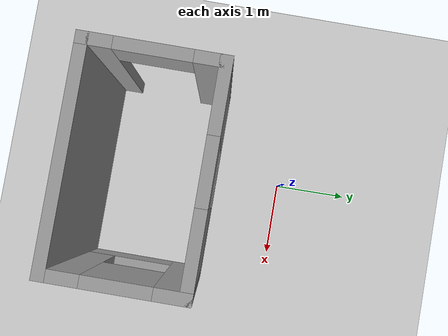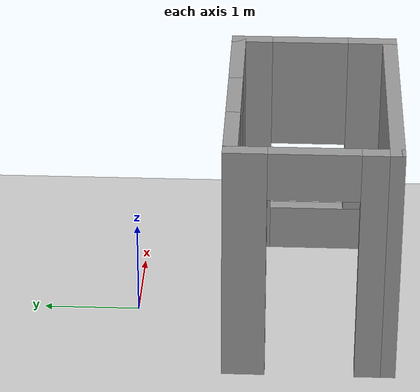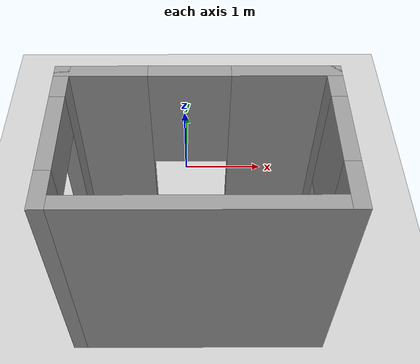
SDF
<sdf version="1.7">
 <world name="default">
  <light name="sun" type="directional">
   <pose>0 0 10 0 -0 0</pose>
   <diffuse>0.8 0.8 0.8 1</diffuse>
   <specular>0.2 0.2 0.2 1</specular>
   <attenuation>
    <range>1000</range>
    <constant>0.9</constant>
    <linear>0.01</linear>
    <quadratic>0.001</quadratic>
   </attenuation>
   <direction>-0.5 0.1 -0.9</direction>
   <spot><inner_angle>0</inner_angle><outer_angle>0</outer_angle><falloff>0</falloff></spot>
  </light>
  <model name="ground_plane">
   <static>1</static>
   <link name="link">
    <collision name="collision">
     <geometry><plane><normal>0 0 1</normal><size>100 100</size></plane></geometry>
     <surface>
      <contact><collide_bitmask>65535</collide_bitmask></contact>
      <friction><ode><mu>100</mu><mu2>50</mu2></ode></friction>
     </surface>
    </collision>
    <visual name="visual">
     <cast_shadows>0</cast_shadows>
     <geometry><plane><normal>0 0 1</normal><size>100 100</size></plane></geometry>
     <material>
      <script><uri>file://media/materials/scripts/gazebo.material</uri><name>Gazebo/Grey</name></script>
     </material>
    </visual>
   </link>
  </model>
  <gravity>0 0 -9.8</gravity>
  <magnetic_field>6e-06 2.3e-05 -4.2e-05</magnetic_field>
  <atmosphere type="adiabatic"/>
  <physics type="ode">
   <max_step_size>0.001</max_step_size>
   <real_time_factor>1</real_time_factor>
   <real_time_update_rate>1000</real_time_update_rate>
  </physics>
  <scene><ambient>0.4 0.4 0.4 1</ambient><background>0.7 0.7 0.7 1</background><shadows>1</shadows></scene>
  <audio><device>default</device></audio>
  <spherical_coordinates>
   <surface_model>EARTH_WGS84</surface_model>
   <latitude_deg>0</latitude_deg>
   <longitude_deg>0</longitude_deg>
   <elevation>0</elevation>
   <heading_deg>0</heading_deg>
  </spherical_coordinates>
  <model name="test1">
   <pose>0.16 -1.3375 0 0 -0 0</pose>
   <link name="Wall_0">
    <pose>-0 0.3375 0 0 -0 0</pose>
    <visual name="Wall_0_Visual_0">
     <pose>-0.9275 0 1.25 0 -0 0</pose>
     <geometry><box><size>0.895 0.15 2.5</size></box></geometry>
     <material>
      <script><uri>file://media/materials/scripts/gazebo.material</uri><name>Gazebo/Grey</name></script>
      <ambient>1 1 1 1</ambient>
     </material>
     <meta><layer>0</layer></meta>
    </visual>
    <collision name="Wall_0_Collision_0">
     <geometry><box><size>0.895 0.15 2.5</size></box></geometry>
     <pose>-0.9275 0 1.25 0 -0 0</pose>
    </collision>
    <visual name="Wall_0_Visual_1">
     <pose>0.4475 0 0.25 0 -0 0</pose>
     <geometry><box><size>1.855 0.15 0.5</size></box></geometry>
     <material>
      <script><uri>file://media/materials/scripts/gazebo.material</uri><name>Gazebo/Grey</name></script>
      <ambient>1 1 1 1</ambient>
     </material>
     <meta><layer>0</layer></meta>
    </visual>
    <collision name="Wall_0_Collision_1">
     <geometry><box><size>1.855 0.15 0.5</size></box></geometry>
     <pose>0.4475 0 0.25 0 -0 0</pose>
    </collision>
    <visual name="Wall_0_Visual_2">
     <pose>0.8475 0 1.5 0 -0 0</pose>
     <geometry><box><size>1.055 0.15 2</size></box></geometry>
     <material>
      <script><uri>file://media/materials/scripts/gazebo.material</uri><name>Gazebo/Grey</name></script>
      <ambient>1 1 1 1</ambient>
     </material>
     <meta><layer>0</layer></meta>
    </visual>
    <collision name="Wall_0_Collision_2">
     <geometry><box><size>1.055 0.15 2</size></box></geometry>
     <pose>0.8475 0 1.5 0 -0 0</pose>
    </collision>
    <visual name="Wall_0_Visual_3">
     <pose>-0.08 0 1.9 0 -0 0</pose>
     <geometry><box><size>0.8 0.15 1.2</size></box></geometry>
     <material>
      <script><uri>file://media/materials/scripts/gazebo.material</uri><name>Gazebo/Grey</name></script>
      <ambient>1 1 1 1</ambient>
     </material>
     <meta><layer>0</layer></meta>
    </visual>
    <collision name="Wall_0_Collision_3">
     <geometry><box><size>0.8 0.15 1.2</size></box></geometry>
     <pose>-0.08 0 1.9 0 -0 0</pose>
    </collision>
   </link>
   <link name="Wall_1">
    <pose>1.3 -0.4625 0 0 -0 -1.5708</pose>
    <visual name="Wall_1_Visual_0">
     <pose>-0.6575 0 1.25 0 -0 0</pose>
     <geometry><box><size>0.435 0.15 2.5</size></box></geometry>
     <material>
      <script><uri>file://media/materials/scripts/gazebo.material</uri><name>Gazebo/Grey</name></script>
      <ambient>1 1 1 1</ambient>
     </material>
     <meta><layer>0</layer></meta>
    </visual>
    <collision name="Wall_1_Collision_0">
     <geometry><box><size>0.435 0.15 2.5</size></box></geometry>
     <pose>-0.6575 0 1.25 0 -0 0</pose>
    </collision>
    <visual name="Wall_1_Visual_1">
     <pose>0.2175 0 0.25 0 -0 0</pose>
     <geometry><box><size>1.315 0.15 0.5</size></box></geometry>
     <material>
      <script><uri>file://media/materials/scripts/gazebo.material</uri><name>Gazebo/Grey</name></script>
      <ambient>1 1 1 1</ambient>
     </material>
     <meta><layer>0</layer></meta>
    </visual>
    <collision name="Wall_1_Collision_1">
     <geometry><box><size>1.315 0.15 0.5</size></box></geometry>
     <pose>0.2175 0 0.25 0 -0 0</pose>
    </collision>
    <visual name="Wall_1_Visual_2">
     <pose>0.6175 0 1.5 0 -0 0</pose>
     <geometry><box><size>0.515 0.15 2</size></box></geometry>
     <material>
      <script><uri>file://media/materials/scripts/gazebo.material</uri><name>Gazebo/Grey</name></script>
      <ambient>1 1 1 1</ambient>
     </material>
     <meta><layer>0</layer></meta>
    </visual>
    <collision name="Wall_1_Collision_2">
     <geometry><box><size>0.515 0.15 2</size></box></geometry>
     <pose>0.6175 0 1.5 0 -0 0</pose>
    </collision>
    <visual name="Wall_1_Visual_3">
     <pose>-0.04 0 1.9 0 -0 0</pose>
     <geometry><box><size>0.8 0.15 1.2</size></box></geometry>
     <material>
      <script><uri>file://media/materials/scripts/gazebo.material</uri><name>Gazebo/Grey</name></script>
      <ambient>1 1 1 1</ambient>
     </material>
     <meta><layer>0</layer></meta>
    </visual>
    <collision name="Wall_1_Collision_3">
     <geometry><box><size>0.8 0.15 1.2</size></box></geometry>
     <pose>-0.04 0 1.9 0 -0 0</pose>
    </collision>
   </link>
   <link name="Wall_2">
    <collision name="Wall_2_Collision">
     <geometry><box><size>2.75 0.15 2.5</size></box></geometry>
     <pose>0 0 1.25 0 -0 0</pose>
    </collision>
    <visual name="Wall_2_Visual">
     <pose>0 0 1.25 0 -0 0</pose>
     <geometry><box><size>2.75 0.15 2.5</size></box></geometry>
     <material>
      <script><uri>file://media/materials/scripts/gazebo.material</uri><name>Gazebo/Grey</name></script>
      <ambient>1 1 1 1</ambient>
     </material>
     <meta><layer>0</layer></meta>
    </visual>
    <pose>-0 -1.2625 0 0 -0 3.14159</pose>
   </link>
   <link name="Wall_3">
    <pose>-1.3 -0.4625 0 0 -0 1.5708</pose>
    <visual name="Wall_3_Visual_0">
     <pose>-0.6675 0 1.25 0 -0 0</pose>
     <geometry><box><size>0.415 0.15 2.5</size></box></geometry>
     <material>
      <script><uri>file://media/materials/scripts/gazebo.material</uri><name>Gazebo/Grey</name></script>
      <ambient>1 1 1 1</ambient>
     </material>
     <meta><layer>0</layer></meta>
    </visual>
    <collision name="Wall_3_Collision_0">
     <geometry><box><size>0.415 0.15 2.5</size></box></geometry>
     <pose>-0.6675 0 1.25 0 -0 0</pose>
    </collision>
    <visual name="Wall_3_Visual_1">
     <pose>0.6575 0 1.25 0 -0 0</pose>
     <geometry><box><size>0.435 0.15 2.5</size></box></geometry>
     <material>
      <script><uri>file://media/materials/scripts/gazebo.material</uri><name>Gazebo/Grey</name></script>
      <ambient>1 1 1 1</ambient>
     </material>
     <meta><layer>0</layer></meta>
    </visual>
    <collision name="Wall_3_Collision_1">
     <geometry><box><size>0.435 0.15 2.5</size></box></geometry>
     <pose>0.6575 0 1.25 0 -0 0</pose>
    </collision>
    <visual name="Wall_3_Visual_2">
     <pose>-0.01 0 2.25 0 -0 0</pose>
     <geometry><box><size>0.9 0.15 0.5</size></box></geometry>
     <material>
      <script><uri>file://media/materials/scripts/gazebo.material</uri><name>Gazebo/Grey</name></script>
      <ambient>1 1 1 1</ambient>
     </material>
     <meta><layer>0</layer></meta>
    </visual>
    <collision name="Wall_3_Collision_2">
     <geometry><box><size>0.9 0.15 0.5</size></box></geometry>
     <pose>-0.01 0 2.25 0 -0 0</pose>
    </collision>
   </link>
   <static>1</static>
  </model>
 </world>
</sdf>
